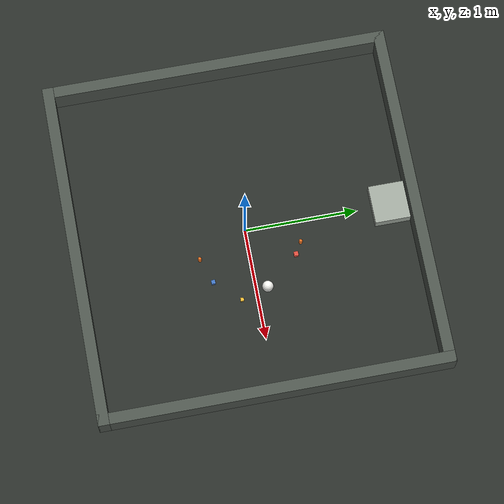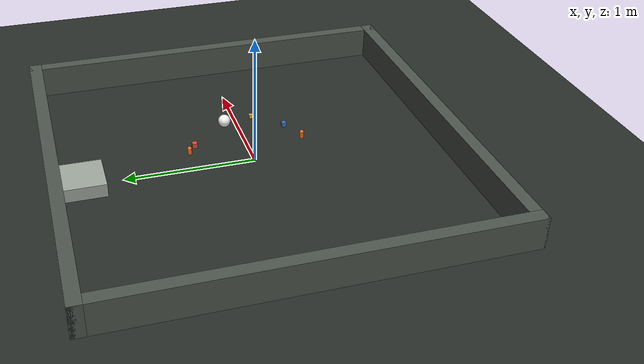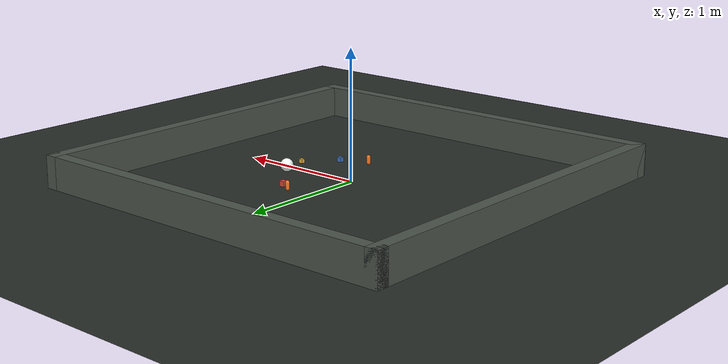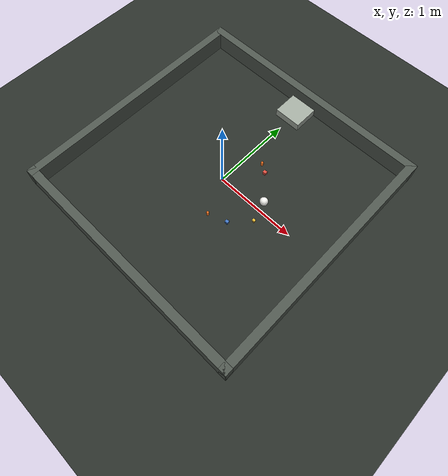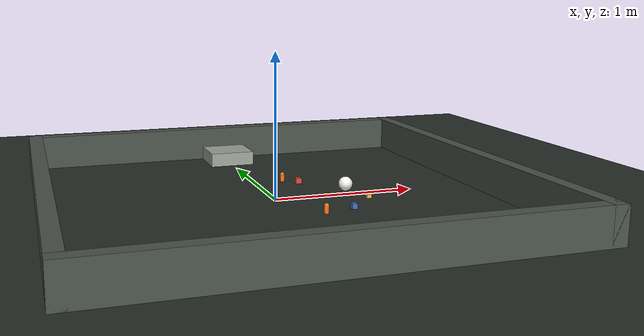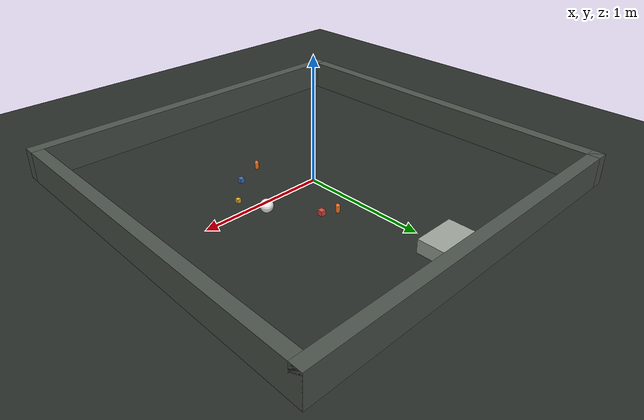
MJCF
<?xml version="1.0" ?>
<!-- GENERATED by build_multiduck.py from scene_physics.xml: 2 ducks (huey, dewey) in one model. -->
<!-- Edit the source, not this file. -->
<mujoco model="microduck">
  <compiler angle="radian" meshdir="assets" autolimits="true" />
  <default>
    <default class="microduck">
      <joint frictionloss="0.1" armature="0.005" />
      <position kp="50" dampratio="1" />
      <default class="visual">
        <geom type="mesh" contype="0" conaffinity="0" group="2" />
      </default>
      <default class="collision">
        <geom group="3" contype="5" conaffinity="5" />
      </default>
    </default>
  </default>
  <default>
    <default class="perfect_actuator">
      <geom contype="0" conaffinity="0" />
      <joint damping="0.15" frictionloss="0.1" armature="0.001" />
      <position kp="10.0" kv="0.1" forcerange="-20.0 20.0" />
    </default>
    <default class="chosen_actuator_old">
      <geom contype="0" conaffinity="0" />
      <joint damping="0.048" frictionloss="0.006" armature="0.002" />
      <position kp="0.52" kv="0.0" forcerange="-0.91 0.91" ctrlrange="-10.0 10.0" />
    </default>
    <default class="chosen_actuator_new">
      <geom contype="0" conaffinity="0" />
      <joint damping="0.041" frictionloss="0.032" armature="0.002" />
      <position kp="0.386" kv="0.0" forcerange="-0.67 0.67" ctrlrange="-10.0 10.0" />
    </default>
    <default class="chosen_actuator_antoine">
      <geom contype="0" conaffinity="0" />
      <joint damping="0.044" frictionloss="0.013" armature="0.0017" />
      <position kp="0.43" kv="0.0" forcerange="-0.75 0.75" ctrlrange="-10.0 10.0" />
    </default>
    <default class="chosen_actuator">
      <geom contype="0" conaffinity="0" />
      <joint damping="0.053" frictionloss="0.0048" armature="0.0018" solreffriction="-50000 -200" solimpfriction="0.99 0.9999 0.001 0.5 2" />
      <position kp="0.55" kv="0.0" forcerange="-0.6405 0.6405" ctrlrange="-10.0 10.0" />
    </default>
    <default class="passive_wheel">
      <geom contype="0" conaffinity="0" />
      <joint damping="0.0" frictionloss="0.0" armature="0.0001" />
    </default>
    <default class="passive_joint">
      <geom contype="0" conaffinity="0" />
      <joint damping="0.0" frictionloss="0.0" armature="0.0001" />
    </default>
  </default>
  <sensor>
    <framequat name="huey_orientation" objtype="site" noise="0.001" objname="huey_imu" />
    <gyro name="huey_angular-velocity" site="huey_imu" noise="0.005" />
    <gyro name="huey_imu_ang_vel" site="huey_imu" />
    <velocimeter name="huey_imu_lin_vel" site="huey_imu" />
    <accelerometer name="huey_imu_accel" site="huey_imu" />
    <subtreeangmom name="huey_root_angmom" body="huey_trunk_base" />
    <framequat name="dewey_orientation" objtype="site" noise="0.001" objname="dewey_imu" />
    <gyro name="dewey_angular-velocity" site="dewey_imu" noise="0.005" />
    <gyro name="dewey_imu_ang_vel" site="dewey_imu" />
    <velocimeter name="dewey_imu_lin_vel" site="dewey_imu" />
    <accelerometer name="dewey_imu_accel" site="dewey_imu" />
    <subtreeangmom name="dewey_root_angmom" body="dewey_trunk_base" />
  </sensor>
  <default>
    <default class="self_collision_only">
      <geom group="3" contype="2" conaffinity="2" />
    </default>
    <equality solref="0.002 1" solimp="0.99 0.999 0.0005 0.5 2" />
  </default>
  <option timestep="0.005" gravity="0 0 -9.81" integrator="implicitfast" iterations="10" ls_iterations="20" />
  <worldbody>
    <geom name="floor" type="plane" size="6 6 0.05" pos="0 0 0" rgba="0.16 0.18 0.16 1" contype="1" conaffinity="1" condim="3" friction="1.0 0.005 0.0001" />
    <body name="step0" pos="0 1.3050000000000002 0">
      <joint name="step0_x" type="slide" axis="1 0 0" limited="false" damping="0" armature="0" frictionloss="0" />
      <joint name="step0_z" type="slide" axis="0 0 1" limited="false" damping="0" armature="0" frictionloss="0" />
      <geom name="step0_geom" type="box" size="0.17 0.17 0.10" pos="0 0 0" contype="4" conaffinity="4" condim="3" friction="1.0 0.02 0.001" rgba="0.62 0.65 0.61 1" mass="200" />
    </body>
    <body name="step1" pos="0 1.3050000000000002 0">
      <joint name="step1_x" type="slide" axis="1 0 0" limited="false" damping="0" armature="0" frictionloss="0" />
      <joint name="step1_z" type="slide" axis="0 0 1" limited="false" damping="0" armature="0" frictionloss="0" />
      <geom name="step1_geom" type="box" size="0.17 0.17 0.10" pos="0 0 0" contype="4" conaffinity="4" condim="3" friction="1.0 0.02 0.001" rgba="0.62 0.65 0.61 1" mass="200" />
    </body>
    <body name="step2" pos="0 1.3050000000000002 0">
      <joint name="step2_x" type="slide" axis="1 0 0" limited="false" damping="0" armature="0" frictionloss="0" />
      <joint name="step2_z" type="slide" axis="0 0 1" limited="false" damping="0" armature="0" frictionloss="0" />
      <geom name="step2_geom" type="box" size="0.17 0.17 0.10" pos="0 0 0" contype="4" conaffinity="4" condim="3" friction="1.0 0.02 0.001" rgba="0.62 0.65 0.61 1" mass="200" />
    </body>
    <body name="step3" pos="0 1.3050000000000002 0">
      <joint name="step3_x" type="slide" axis="1 0 0" limited="false" damping="0" armature="0" frictionloss="0" />
      <joint name="step3_z" type="slide" axis="0 0 1" limited="false" damping="0" armature="0" frictionloss="0" />
      <geom name="step3_geom" type="box" size="0.17 0.17 0.10" pos="0 0 0" contype="4" conaffinity="4" condim="3" friction="1.0 0.02 0.001" rgba="0.62 0.65 0.61 1" mass="200" />
    </body>
    <body name="step4" pos="0 1.3050000000000002 0">
      <joint name="step4_x" type="slide" axis="1 0 0" limited="false" damping="0" armature="0" frictionloss="0" />
      <joint name="step4_z" type="slide" axis="0 0 1" limited="false" damping="0" armature="0" frictionloss="0" />
      <geom name="step4_geom" type="box" size="0.17 0.17 0.10" pos="0 0 0" contype="4" conaffinity="4" condim="3" friction="1.0 0.02 0.001" rgba="0.62 0.65 0.61 1" mass="200" />
    </body>
    <body name="step5" pos="0 1.3050000000000002 0">
      <joint name="step5_x" type="slide" axis="1 0 0" limited="false" damping="0" armature="0" frictionloss="0" />
      <joint name="step5_z" type="slide" axis="0 0 1" limited="false" damping="0" armature="0" frictionloss="0" />
      <geom name="step5_geom" type="box" size="0.17 0.17 0.10" pos="0 0 0" contype="4" conaffinity="4" condim="3" friction="1.0 0.02 0.001" rgba="0.62 0.65 0.61 1" mass="200" />
    </body>
    <body name="step6" pos="0 1.3050000000000002 0">
      <joint name="step6_x" type="slide" axis="1 0 0" limited="false" damping="0" armature="0" frictionloss="0" />
      <joint name="step6_z" type="slide" axis="0 0 1" limited="false" damping="0" armature="0" frictionloss="0" />
      <geom name="step6_geom" type="box" size="0.17 0.17 0.10" pos="0 0 0" contype="4" conaffinity="4" condim="3" friction="1.0 0.02 0.001" rgba="0.62 0.65 0.61 1" mass="200" />
    </body>
    <body name="step7" pos="0 1.3050000000000002 0">
      <joint name="step7_x" type="slide" axis="1 0 0" limited="false" damping="0" armature="0" frictionloss="0" />
      <joint name="step7_z" type="slide" axis="0 0 1" limited="false" damping="0" armature="0" frictionloss="0" />
      <geom name="step7_geom" type="box" size="0.17 0.17 0.10" pos="0 0 0" contype="4" conaffinity="4" condim="3" friction="1.0 0.02 0.001" rgba="0.62 0.65 0.61 1" mass="200" />
    </body>
    <body name="step8" pos="0 1.3050000000000002 0">
      <joint name="step8_x" type="slide" axis="1 0 0" limited="false" damping="0" armature="0" frictionloss="0" />
      <joint name="step8_z" type="slide" axis="0 0 1" limited="false" damping="0" armature="0" frictionloss="0" />
      <geom name="step8_geom" type="box" size="0.17 0.17 0.10" pos="0 0 0" contype="4" conaffinity="4" condim="3" friction="1.0 0.02 0.001" rgba="0.62 0.65 0.61 1" mass="200" />
    </body>
    <body name="step9" pos="0 1.3050000000000002 0">
      <joint name="step9_x" type="slide" axis="1 0 0" limited="false" damping="0" armature="0" frictionloss="0" />
      <joint name="step9_z" type="slide" axis="0 0 1" limited="false" damping="0" armature="0" frictionloss="0" />
      <geom name="step9_geom" type="box" size="0.17 0.17 0.10" pos="0 0 0" contype="4" conaffinity="4" condim="3" friction="1.0 0.02 0.001" rgba="0.62 0.65 0.61 1" mass="200" />
    </body>
    <body name="step10" pos="0 1.3050000000000002 0">
      <joint name="step10_x" type="slide" axis="1 0 0" limited="false" damping="0" armature="0" frictionloss="0" />
      <joint name="step10_z" type="slide" axis="0 0 1" limited="false" damping="0" armature="0" frictionloss="0" />
      <geom name="step10_geom" type="box" size="0.17 0.17 0.10" pos="0 0 0" contype="4" conaffinity="4" condim="3" friction="1.0 0.02 0.001" rgba="0.62 0.65 0.61 1" mass="200" />
    </body>
    <body name="step11" pos="0 1.3050000000000002 0">
      <joint name="step11_x" type="slide" axis="1 0 0" limited="false" damping="0" armature="0" frictionloss="0" />
      <joint name="step11_z" type="slide" axis="0 0 1" limited="false" damping="0" armature="0" frictionloss="0" />
      <geom name="step11_geom" type="box" size="0.17 0.17 0.10" pos="0 0 0" contype="4" conaffinity="4" condim="3" friction="1.0 0.02 0.001" rgba="0.62 0.65 0.61 1" mass="200" />
    </body>
    <body name="step12" pos="0 1.3050000000000002 0">
      <joint name="step12_x" type="slide" axis="1 0 0" limited="false" damping="0" armature="0" frictionloss="0" />
      <joint name="step12_z" type="slide" axis="0 0 1" limited="false" damping="0" armature="0" frictionloss="0" />
      <geom name="step12_geom" type="box" size="0.17 0.17 0.10" pos="0 0 0" contype="4" conaffinity="4" condim="3" friction="1.0 0.02 0.001" rgba="0.62 0.65 0.61 1" mass="200" />
    </body>
    <body name="step13" pos="0 1.3050000000000002 0">
      <joint name="step13_x" type="slide" axis="1 0 0" limited="false" damping="0" armature="0" frictionloss="0" />
      <joint name="step13_z" type="slide" axis="0 0 1" limited="false" damping="0" armature="0" frictionloss="0" />
      <geom name="step13_geom" type="box" size="0.17 0.17 0.10" pos="0 0 0" contype="4" conaffinity="4" condim="3" friction="1.0 0.02 0.001" rgba="0.62 0.65 0.61 1" mass="200" />
    </body>
    <geom name="wall_n" type="box" size="1.55 0.05 0.125" pos="0.0 1.5 0.125" contype="1" conaffinity="5" condim="3" friction="1.0 0.02 0.001" rgba="0.30 0.33 0.30 1" />
    <geom name="wall_s" type="box" size="1.55 0.05 0.125" pos="0.0 -1.5 0.125" contype="1" conaffinity="5" condim="3" friction="1.0 0.02 0.001" rgba="0.30 0.33 0.30 1" />
    <geom name="wall_e" type="box" size="0.05 1.55 0.125" pos="1.5 0.0 0.125" contype="1" conaffinity="5" condim="3" friction="1.0 0.02 0.001" rgba="0.30 0.33 0.30 1" />
    <geom name="wall_w" type="box" size="0.05 1.55 0.125" pos="-1.5 0.0 0.125" contype="1" conaffinity="5" condim="3" friction="1.0 0.02 0.001" rgba="0.30 0.33 0.30 1" />
    <body name="ball" pos="0.55 0.10 0.05">
      <freejoint name="ball_free" />
      <geom name="ball_geom" type="sphere" size="0.05" mass="0.03" contype="1" conaffinity="5" condim="6" friction="0.4 0.01 0.003" solref="0.03 0.4" rgba="0.96 0.96 0.94 1" />
    </body>
    <body name="block_a" pos="0.30 0.40 0.021">
      <freejoint name="block_a_free" />
      <geom name="block_a_geom" type="box" size="0.02 0.02 0.02" mass="0.030" contype="1" conaffinity="5" condim="4" friction="0.9 0.02 0.002" rgba="0.85 0.30 0.24 1" />
    </body>
    <body name="block_b" pos="0.42 -0.36 0.019">
      <freejoint name="block_b_free" />
      <geom name="block_b_geom" type="box" size="0.018 0.018 0.018" mass="0.025" contype="1" conaffinity="5" condim="4" friction="0.9 0.02 0.002" rgba="0.25 0.45 0.75 1" />
    </body>
    <body name="block_c" pos="0.62 -0.14 0.016">
      <freejoint name="block_c_free" />
      <geom name="block_c_geom" type="box" size="0.015 0.015 0.015" mass="0.018" contype="1" conaffinity="5" condim="4" friction="0.9 0.02 0.002" rgba="0.92 0.72 0.20 1" />
    </body>
    <body name="cone_a" pos="0.20 -0.44 0.038">
      <freejoint name="cone_a_free" />
      <geom name="cone_a_geom" type="capsule" size="0.016 0.022" mass="0.020" contype="1" conaffinity="5" condim="4" friction="0.8 0.02 0.002" rgba="0.94 0.45 0.13 1" />
    </body>
    <body name="cone_b" pos="0.20 0.46 0.038">
      <freejoint name="cone_b_free" />
      <geom name="cone_b_geom" type="capsule" size="0.016 0.022" mass="0.020" contype="1" conaffinity="5" condim="4" friction="0.8 0.02 0.002" rgba="0.94 0.45 0.13 1" />
    </body>
  </worldbody>
  <worldbody>
    <body name="huey_trunk_base" pos="0 -0.2500 0.12" quat="1 0 0 0" childclass="microduck">
      <freejoint name="huey_trunk_base_freejoint" />
      <inertial pos="-0.0226332 -2.70828e-05 0.00280064" mass="0.199224" fullinertia="0.000123975 0.000145931 0.000115351 7.1651e-08 -2.06915e-05 1.32429e-07" />
      <geom type="mesh" class="self_collision_only" pos="0.004 -0 -0.0175215" quat="0.707107 -0 0 0.707107" mesh="power_support" />
      <geom type="mesh" class="collision" pos="-0.0359693 0 -0.00385049" quat="0.00617059 0.70708 -0.70708 -0.00617059" mesh="np_f970" />
      <site group="3" name="huey_imu" pos="-0.021 6.64098e-05 -0.0146984" quat="1 -0 -0 0" />
      <body name="huey_yaw2roll" pos="0.006 0.0175 -0.005" quat="0 -0.707107 -0.707107 -0">
        <joint axis="0 0 1" name="huey_left_hip_yaw" type="hinge" range="-0.4363323129985824 0.5235987755982988" class="chosen_actuator" />
        <inertial pos="-8.8e-11 0.00099414 0.0168917" mass="0.0230406" fullinertia="4.1964e-06 3.41752e-06 2.3265e-06 -0 -0 -5.0881e-08" />
        <body name="huey_hip_l" pos="0 0.0165 0.0125" quat="0.707107 -0.707107 -0 -0">
          <joint axis="0 0 1" name="huey_left_hip_roll" type="hinge" range="-0.3839724354387525 0.3839724354387525" class="chosen_actuator" />
          <inertial pos="0.014815 1.6179e-08 -0.00829992" mass="0.00618934" fullinertia="8.60626e-07 1.15753e-06 6.51588e-07 1e-12 3.89882e-07 -1e-12" />
          <geom type="mesh" class="collision" pos="-0.0175 0 -0.0185" quat="0.707107 -0.707107 0 -0" mesh="hip_l" />
          <body name="huey_upper_leg_left" pos="0.025 0 -0.0185" quat="0.5 -0.5 0.5 -0.5">
            <joint axis="0 0 1" name="huey_left_hip_pitch" type="hinge" range="-1.570796326795005 1.5707963267947882" class="chosen_actuator" />
            <inertial pos="0.006766 0.0228838 0.0134531" mass="0.0482067" fullinertia="1.68753e-05 1.03691e-05 1.98269e-05 -4.41852e-06 2.27982e-07 3.89298e-07" />
            <body name="huey_leg" pos="0.022 0.0357771 -0.004" quat="0 0.707107 0.707107 0">
              <joint axis="0 0 1" name="huey_left_knee" type="hinge" range="-1.570796326795012 1.570796326794781" class="chosen_actuator" />
              <inertial pos="-1.52e-10 0.0318937 -0.00953505" mass="0.0215844" fullinertia="5.25056e-06 2.15507e-06 4.33925e-06 -1e-12 0 7.65005e-07" />
              <geom type="mesh" class="collision" pos="-0.022 0.0357771 0.0385" quat="0.5 0.5 0.5 -0.5" mesh="leg" />
              <body name="huey_ankle_left" pos="0 0.042 -0.026" quat="0 1 -0 0">
                <joint axis="0 0 1" name="huey_left_ankle" type="hinge" range="-1.5707963267949019 1.5707963267948912" class="chosen_actuator" />
                <inertial pos="-0.00615738 -0.0137483 -0.0156586" mass="0.0300246" fullinertia="5.91525e-06 1.11534e-05 7.74015e-06 -2.0535e-07 8.2152e-08 5.6714e-08" />
                <geom type="mesh" name="huey_left_foot_collision" class="collision" pos="-0.022 0.00622291 -0.0647" quat="0.5 -0.5 -0.5 -0.5" mesh="sole_left" priority="1" friction="1.0 0.005 0.0001" />
                <site group="3" name="huey_left_foot" pos="-0 -0.0238146 -0.0140852" quat="0 0 0.707107 0.707107" />
              </body>
            </body>
          </body>
        </body>
      </body>
      <body name="huey_neck" pos="0.026 0.0145 0.0324215" quat="0 0 0.707107 -0.707107">
        <joint axis="0 0 1" name="huey_neck_pitch" type="hinge" range="-1.5707963267948966 1.0471975511965976" class="chosen_actuator" />
        <inertial pos="0 -0.025 0.0141665" mass="0.0368414" fullinertia="1.72925e-05 3.12694e-06 1.63707e-05 0 0 0" />
        <body name="huey_neck_pitch" pos="0 -0.05 -0" quat="0 1 0 0">
          <joint axis="0 0 1" name="huey_head_pitch" type="hinge" range="-1.5707963267948974 1.5707963267948957" class="chosen_actuator" />
          <inertial pos="-6.533e-09 0.0116641 -0.0145" mass="0.00572" fullinertia="1.09186e-06 9.66855e-07 5.12111e-07 0 0 0" />
          <body name="huey_yaw_roll_motion" pos="-0 0.0186931 -0.0145" quat="0 0 -0.707107 -0.707107">
            <joint axis="0 0 1" name="huey_head_yaw" type="hinge" range="-2.967059728390373 2.967059728390348" class="chosen_actuator" />
            <inertial pos="-0.000166657 -0.00500964 0.0178065" mass="0.0486" fullinertia="6.97903e-06 8.10293e-06 9.57884e-06 3.21657e-07 -3.4797e-08 3.4295e-07" />
            <body name="huey_jaw_soft" pos="-0.0179 0 0.0145" quat="0.707107 -0 -0.707107 -0">
              <joint axis="0 0 1" name="huey_head_roll" type="hinge" range="-0.43633231299859127 0.4363323129985735" class="chosen_actuator" />
              <inertial pos="0.00460523 0.00120047 -0.0324761" mass="0.188766" fullinertia="0.000320812 0.0002541 0.000149882 -6.32292e-07 6.57154e-06 4.18476e-06" />
              <geom type="mesh" class="collision" pos="-0.0045 -0 -0.018" quat="0.5 0.5 0.5 0.5" mesh="top_head_shell" />
              <geom type="mesh" class="collision" pos="-0.0045 0 -0.018" quat="0.5 0.5 0.5 0.5" mesh="jaw" />
              <geom type="mesh" class="collision" pos="-0.0043 -0 -0.018" quat="0.5 0.5 0.5 0.5" mesh="bottom_head_shell" />
              <site group="3" name="huey_head_camera" pos="0.0155 -9.13778e-05 -0.0733" quat="0.707107 0 0.707107 -0" />
              <camera name="huey_head_camera" pos="0.0155 -9.13778e-05 -0.0733" quat="0 0 -1 0" />
              <site group="3" name="huey_tof" pos="0.0135 0.0224086 -0.0733" quat="0.707107 0 0.707107 -0" />
              <site group="3" name="huey_head_imu" pos="0.0152323 0.000111069 -0.05106" quat="1 0 0 -0" />
              <site group="3" name="huey_mouth_tip" pos="-0.00809334 -0 -0.0777383" quat="0.704015 0 0.710185 -0" />
            </body>
          </body>
        </body>
      </body>
      <body name="huey_bearing_roll" pos="0.006 -0.0175 -0.005" quat="0 0.707107 0.707107 0">
        <joint axis="0 0 1" name="huey_right_hip_yaw" type="hinge" range="-0.5235987755982988 0.4363323129985824" class="chosen_actuator" />
        <inertial pos="-8.8e-11 0.00099414 0.0168917" mass="0.0230406" fullinertia="4.1964e-06 3.41752e-06 2.3265e-06 -0 -0 -5.0881e-08" />
        <body name="huey_hip_l_2" pos="-0 0.0165 0.0125" quat="0 -0 0.707107 0.707107">
          <joint axis="0 0 1" name="huey_right_hip_roll" type="hinge" range="-0.3839724354387525 0.3839724354387525" class="chosen_actuator" />
          <inertial pos="0.014815 1.6212e-08 -0.00829992" mass="0.00618934" fullinertia="8.60626e-07 1.15753e-06 6.51588e-07 1e-12 3.89882e-07 -1e-12" />
          <geom type="mesh" class="collision" pos="-0.0175 0 -0.0185" quat="0.707107 -0.707107 -0 -0" mesh="hip_l" />
          <body name="huey_upper_leg_right" pos="0.025 0 -0.0185" quat="0.5 -0.5 0.5 -0.5">
            <joint axis="0 0 1" name="huey_right_hip_pitch" type="hinge" range="-1.5707963267949268 1.5707963267948664" class="chosen_actuator" />
            <inertial pos="-0.006766 0.0228838 0.0134531" mass="0.0482067" fullinertia="1.68753e-05 1.03691e-05 1.98269e-05 4.41852e-06 -2.27982e-07 3.89298e-07" />
            <body name="huey_leg_2" pos="-0.022 0.0357771 -0.004" quat="0 1 -0 -0">
              <joint axis="0 0 1" name="huey_right_knee" type="hinge" range="-1.570796326794932 1.570796326794861" class="chosen_actuator" />
              <inertial pos="-0.0318937 -1.52e-10 -0.00953505" mass="0.0215844" fullinertia="2.15507e-06 5.25056e-06 4.33925e-06 1e-12 -7.65005e-07 0" />
              <geom type="mesh" class="collision" pos="-0.0357771 -0.022 0.0385" quat="0.707107 0 0.707107 -0" mesh="leg" />
              <body name="huey_ankle_right" pos="-0.042 0 -0.026" quat="0 -0.707107 -0.707107 0">
                <joint axis="0 0 1" name="huey_right_ankle" type="hinge" range="-1.5707963267949054 1.5707963267948877" class="chosen_actuator" />
                <inertial pos="0.00615539 -0.0137482 -0.0156566" mass="0.0300251" fullinertia="5.91534e-06 1.11534e-05 7.74016e-06 2.04877e-07 -8.247e-08 5.7017e-08" />
                <geom type="mesh" name="huey_right_foot_collision" class="collision" pos="0.022 0.00622291 -0.0647" quat="0.5 -0.5 0.5 0.5" mesh="sole_right" priority="1" friction="1.0 0.005 0.0001" />
                <site group="3" name="huey_right_foot" pos="0 -0.0238146 -0.0140852" quat="0.707107 -0.707107 0 0" />
              </body>
            </body>
          </body>
        </body>
      </body>
    </body>
    <body name="dewey_trunk_base" pos="0 0.2500 0.12" quat="1 0 0 0" childclass="microduck">
      <freejoint name="dewey_trunk_base_freejoint" />
      <inertial pos="-0.0226332 -2.70828e-05 0.00280064" mass="0.199224" fullinertia="0.000123975 0.000145931 0.000115351 7.1651e-08 -2.06915e-05 1.32429e-07" />
      <geom type="mesh" class="self_collision_only" pos="0.004 -0 -0.0175215" quat="0.707107 -0 0 0.707107" mesh="power_support" />
      <geom type="mesh" class="collision" pos="-0.0359693 0 -0.00385049" quat="0.00617059 0.70708 -0.70708 -0.00617059" mesh="np_f970" />
      <site group="3" name="dewey_imu" pos="-0.021 6.64098e-05 -0.0146984" quat="1 -0 -0 0" />
      <body name="dewey_yaw2roll" pos="0.006 0.0175 -0.005" quat="0 -0.707107 -0.707107 -0">
        <joint axis="0 0 1" name="dewey_left_hip_yaw" type="hinge" range="-0.4363323129985824 0.5235987755982988" class="chosen_actuator" />
        <inertial pos="-8.8e-11 0.00099414 0.0168917" mass="0.0230406" fullinertia="4.1964e-06 3.41752e-06 2.3265e-06 -0 -0 -5.0881e-08" />
        <body name="dewey_hip_l" pos="0 0.0165 0.0125" quat="0.707107 -0.707107 -0 -0">
          <joint axis="0 0 1" name="dewey_left_hip_roll" type="hinge" range="-0.3839724354387525 0.3839724354387525" class="chosen_actuator" />
          <inertial pos="0.014815 1.6179e-08 -0.00829992" mass="0.00618934" fullinertia="8.60626e-07 1.15753e-06 6.51588e-07 1e-12 3.89882e-07 -1e-12" />
          <geom type="mesh" class="collision" pos="-0.0175 0 -0.0185" quat="0.707107 -0.707107 0 -0" mesh="hip_l" />
          <body name="dewey_upper_leg_left" pos="0.025 0 -0.0185" quat="0.5 -0.5 0.5 -0.5">
            <joint axis="0 0 1" name="dewey_left_hip_pitch" type="hinge" range="-1.570796326795005 1.5707963267947882" class="chosen_actuator" />
            <inertial pos="0.006766 0.0228838 0.0134531" mass="0.0482067" fullinertia="1.68753e-05 1.03691e-05 1.98269e-05 -4.41852e-06 2.27982e-07 3.89298e-07" />
            <body name="dewey_leg" pos="0.022 0.0357771 -0.004" quat="0 0.707107 0.707107 0">
              <joint axis="0 0 1" name="dewey_left_knee" type="hinge" range="-1.570796326795012 1.570796326794781" class="chosen_actuator" />
              <inertial pos="-1.52e-10 0.0318937 -0.00953505" mass="0.0215844" fullinertia="5.25056e-06 2.15507e-06 4.33925e-06 -1e-12 0 7.65005e-07" />
              <geom type="mesh" class="collision" pos="-0.022 0.0357771 0.0385" quat="0.5 0.5 0.5 -0.5" mesh="leg" />
              <body name="dewey_ankle_left" pos="0 0.042 -0.026" quat="0 1 -0 0">
                <joint axis="0 0 1" name="dewey_left_ankle" type="hinge" range="-1.5707963267949019 1.5707963267948912" class="chosen_actuator" />
                <inertial pos="-0.00615738 -0.0137483 -0.0156586" mass="0.0300246" fullinertia="5.91525e-06 1.11534e-05 7.74015e-06 -2.0535e-07 8.2152e-08 5.6714e-08" />
                <geom type="mesh" name="dewey_left_foot_collision" class="collision" pos="-0.022 0.00622291 -0.0647" quat="0.5 -0.5 -0.5 -0.5" mesh="sole_left" priority="1" friction="1.0 0.005 0.0001" />
                <site group="3" name="dewey_left_foot" pos="-0 -0.0238146 -0.0140852" quat="0 0 0.707107 0.707107" />
              </body>
            </body>
          </body>
        </body>
      </body>
      <body name="dewey_neck" pos="0.026 0.0145 0.0324215" quat="0 0 0.707107 -0.707107">
        <joint axis="0 0 1" name="dewey_neck_pitch" type="hinge" range="-1.5707963267948966 1.0471975511965976" class="chosen_actuator" />
        <inertial pos="0 -0.025 0.0141665" mass="0.0368414" fullinertia="1.72925e-05 3.12694e-06 1.63707e-05 0 0 0" />
        <body name="dewey_neck_pitch" pos="0 -0.05 -0" quat="0 1 0 0">
          <joint axis="0 0 1" name="dewey_head_pitch" type="hinge" range="-1.5707963267948974 1.5707963267948957" class="chosen_actuator" />
          <inertial pos="-6.533e-09 0.0116641 -0.0145" mass="0.00572" fullinertia="1.09186e-06 9.66855e-07 5.12111e-07 0 0 0" />
          <body name="dewey_yaw_roll_motion" pos="-0 0.0186931 -0.0145" quat="0 0 -0.707107 -0.707107">
            <joint axis="0 0 1" name="dewey_head_yaw" type="hinge" range="-2.967059728390373 2.967059728390348" class="chosen_actuator" />
            <inertial pos="-0.000166657 -0.00500964 0.0178065" mass="0.0486" fullinertia="6.97903e-06 8.10293e-06 9.57884e-06 3.21657e-07 -3.4797e-08 3.4295e-07" />
            <body name="dewey_jaw_soft" pos="-0.0179 0 0.0145" quat="0.707107 -0 -0.707107 -0">
              <joint axis="0 0 1" name="dewey_head_roll" type="hinge" range="-0.43633231299859127 0.4363323129985735" class="chosen_actuator" />
              <inertial pos="0.00460523 0.00120047 -0.0324761" mass="0.188766" fullinertia="0.000320812 0.0002541 0.000149882 -6.32292e-07 6.57154e-06 4.18476e-06" />
              <geom type="mesh" class="collision" pos="-0.0045 -0 -0.018" quat="0.5 0.5 0.5 0.5" mesh="top_head_shell" />
              <geom type="mesh" class="collision" pos="-0.0045 0 -0.018" quat="0.5 0.5 0.5 0.5" mesh="jaw" />
              <geom type="mesh" class="collision" pos="-0.0043 -0 -0.018" quat="0.5 0.5 0.5 0.5" mesh="bottom_head_shell" />
              <site group="3" name="dewey_head_camera" pos="0.0155 -9.13778e-05 -0.0733" quat="0.707107 0 0.707107 -0" />
              <camera name="dewey_head_camera" pos="0.0155 -9.13778e-05 -0.0733" quat="0 0 -1 0" />
              <site group="3" name="dewey_tof" pos="0.0135 0.0224086 -0.0733" quat="0.707107 0 0.707107 -0" />
              <site group="3" name="dewey_head_imu" pos="0.0152323 0.000111069 -0.05106" quat="1 0 0 -0" />
              <site group="3" name="dewey_mouth_tip" pos="-0.00809334 -0 -0.0777383" quat="0.704015 0 0.710185 -0" />
            </body>
          </body>
        </body>
      </body>
      <body name="dewey_bearing_roll" pos="0.006 -0.0175 -0.005" quat="0 0.707107 0.707107 0">
        <joint axis="0 0 1" name="dewey_right_hip_yaw" type="hinge" range="-0.5235987755982988 0.4363323129985824" class="chosen_actuator" />
        <inertial pos="-8.8e-11 0.00099414 0.0168917" mass="0.0230406" fullinertia="4.1964e-06 3.41752e-06 2.3265e-06 -0 -0 -5.0881e-08" />
        <body name="dewey_hip_l_2" pos="-0 0.0165 0.0125" quat="0 -0 0.707107 0.707107">
          <joint axis="0 0 1" name="dewey_right_hip_roll" type="hinge" range="-0.3839724354387525 0.3839724354387525" class="chosen_actuator" />
          <inertial pos="0.014815 1.6212e-08 -0.00829992" mass="0.00618934" fullinertia="8.60626e-07 1.15753e-06 6.51588e-07 1e-12 3.89882e-07 -1e-12" />
          <geom type="mesh" class="collision" pos="-0.0175 0 -0.0185" quat="0.707107 -0.707107 -0 -0" mesh="hip_l" />
          <body name="dewey_upper_leg_right" pos="0.025 0 -0.0185" quat="0.5 -0.5 0.5 -0.5">
            <joint axis="0 0 1" name="dewey_right_hip_pitch" type="hinge" range="-1.5707963267949268 1.5707963267948664" class="chosen_actuator" />
            <inertial pos="-0.006766 0.0228838 0.0134531" mass="0.0482067" fullinertia="1.68753e-05 1.03691e-05 1.98269e-05 4.41852e-06 -2.27982e-07 3.89298e-07" />
            <body name="dewey_leg_2" pos="-0.022 0.0357771 -0.004" quat="0 1 -0 -0">
              <joint axis="0 0 1" name="dewey_right_knee" type="hinge" range="-1.570796326794932 1.570796326794861" class="chosen_actuator" />
              <inertial pos="-0.0318937 -1.52e-10 -0.00953505" mass="0.0215844" fullinertia="2.15507e-06 5.25056e-06 4.33925e-06 1e-12 -7.65005e-07 0" />
              <geom type="mesh" class="collision" pos="-0.0357771 -0.022 0.0385" quat="0.707107 0 0.707107 -0" mesh="leg" />
              <body name="dewey_ankle_right" pos="-0.042 0 -0.026" quat="0 -0.707107 -0.707107 0">
                <joint axis="0 0 1" name="dewey_right_ankle" type="hinge" range="-1.5707963267949054 1.5707963267948877" class="chosen_actuator" />
                <inertial pos="0.00615539 -0.0137482 -0.0156566" mass="0.0300251" fullinertia="5.91534e-06 1.11534e-05 7.74016e-06 2.04877e-07 -8.247e-08 5.7017e-08" />
                <geom type="mesh" name="dewey_right_foot_collision" class="collision" pos="0.022 0.00622291 -0.0647" quat="0.5 -0.5 0.5 0.5" mesh="sole_right" priority="1" friction="1.0 0.005 0.0001" />
                <site group="3" name="dewey_right_foot" pos="0 -0.0238146 -0.0140852" quat="0.707107 -0.707107 0 0" />
              </body>
            </body>
          </body>
        </body>
      </body>
    </body>
  </worldbody>
  <asset>
    <mesh file="sole_left.stl" />
    <mesh file="sole_right.stl" />
    <mesh file="leg.stl" />
    <mesh file="top_head_shell.stl" />
    <mesh file="bottom_head_shell.stl" />
    <mesh file="np_f970.stl" />
    <mesh file="hip_l.stl" />
    <mesh file="power_support.stl" />
    <mesh file="jaw.stl" />
  </asset>
  <actuator>
    <position class="chosen_actuator" name="huey_left_hip_yaw" joint="huey_left_hip_yaw" />
    <position class="chosen_actuator" name="huey_left_hip_roll" joint="huey_left_hip_roll" />
    <position class="chosen_actuator" name="huey_left_hip_pitch" joint="huey_left_hip_pitch" />
    <position class="chosen_actuator" name="huey_left_knee" joint="huey_left_knee" />
    <position class="chosen_actuator" name="huey_left_ankle" joint="huey_left_ankle" />
    <position class="chosen_actuator" name="huey_neck_pitch" joint="huey_neck_pitch" />
    <position class="chosen_actuator" name="huey_head_pitch" joint="huey_head_pitch" />
    <position class="chosen_actuator" name="huey_head_yaw" joint="huey_head_yaw" />
    <position class="chosen_actuator" name="huey_head_roll" joint="huey_head_roll" />
    <position class="chosen_actuator" name="huey_right_hip_yaw" joint="huey_right_hip_yaw" />
    <position class="chosen_actuator" name="huey_right_hip_roll" joint="huey_right_hip_roll" />
    <position class="chosen_actuator" name="huey_right_hip_pitch" joint="huey_right_hip_pitch" />
    <position class="chosen_actuator" name="huey_right_knee" joint="huey_right_knee" />
    <position class="chosen_actuator" name="huey_right_ankle" joint="huey_right_ankle" />
    <position class="chosen_actuator" name="dewey_left_hip_yaw" joint="dewey_left_hip_yaw" />
    <position class="chosen_actuator" name="dewey_left_hip_roll" joint="dewey_left_hip_roll" />
    <position class="chosen_actuator" name="dewey_left_hip_pitch" joint="dewey_left_hip_pitch" />
    <position class="chosen_actuator" name="dewey_left_knee" joint="dewey_left_knee" />
    <position class="chosen_actuator" name="dewey_left_ankle" joint="dewey_left_ankle" />
    <position class="chosen_actuator" name="dewey_neck_pitch" joint="dewey_neck_pitch" />
    <position class="chosen_actuator" name="dewey_head_pitch" joint="dewey_head_pitch" />
    <position class="chosen_actuator" name="dewey_head_yaw" joint="dewey_head_yaw" />
    <position class="chosen_actuator" name="dewey_head_roll" joint="dewey_head_roll" />
    <position class="chosen_actuator" name="dewey_right_hip_yaw" joint="dewey_right_hip_yaw" />
    <position class="chosen_actuator" name="dewey_right_hip_roll" joint="dewey_right_hip_roll" />
    <position class="chosen_actuator" name="dewey_right_hip_pitch" joint="dewey_right_hip_pitch" />
    <position class="chosen_actuator" name="dewey_right_knee" joint="dewey_right_knee" />
    <position class="chosen_actuator" name="dewey_right_ankle" joint="dewey_right_ankle" />
  </actuator>
  <equality />
</mujoco>
